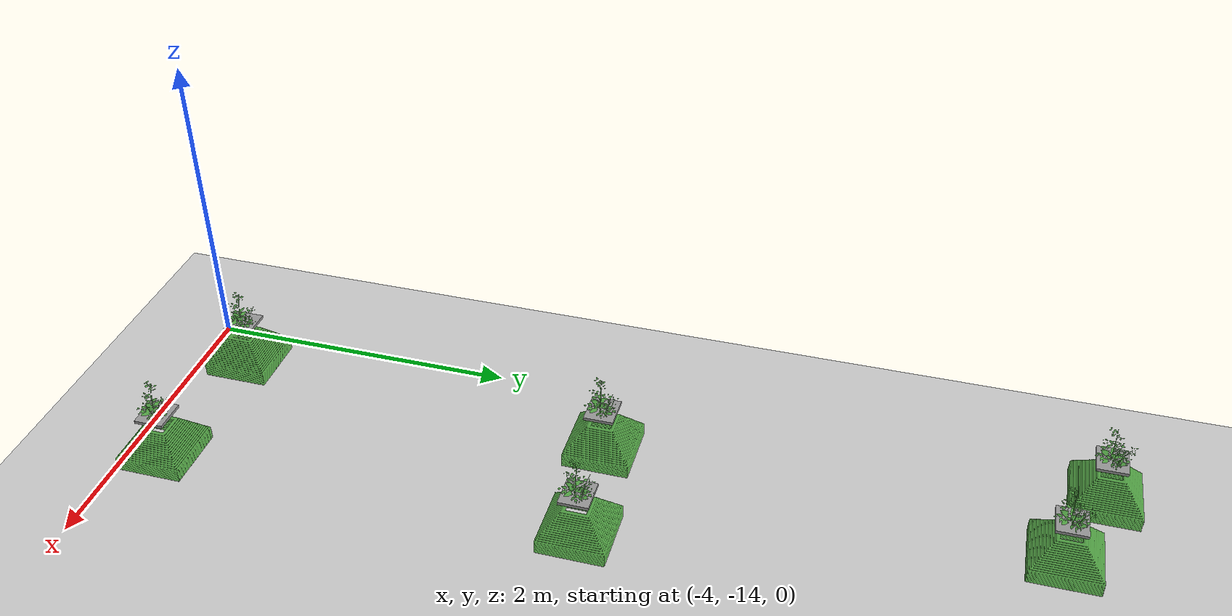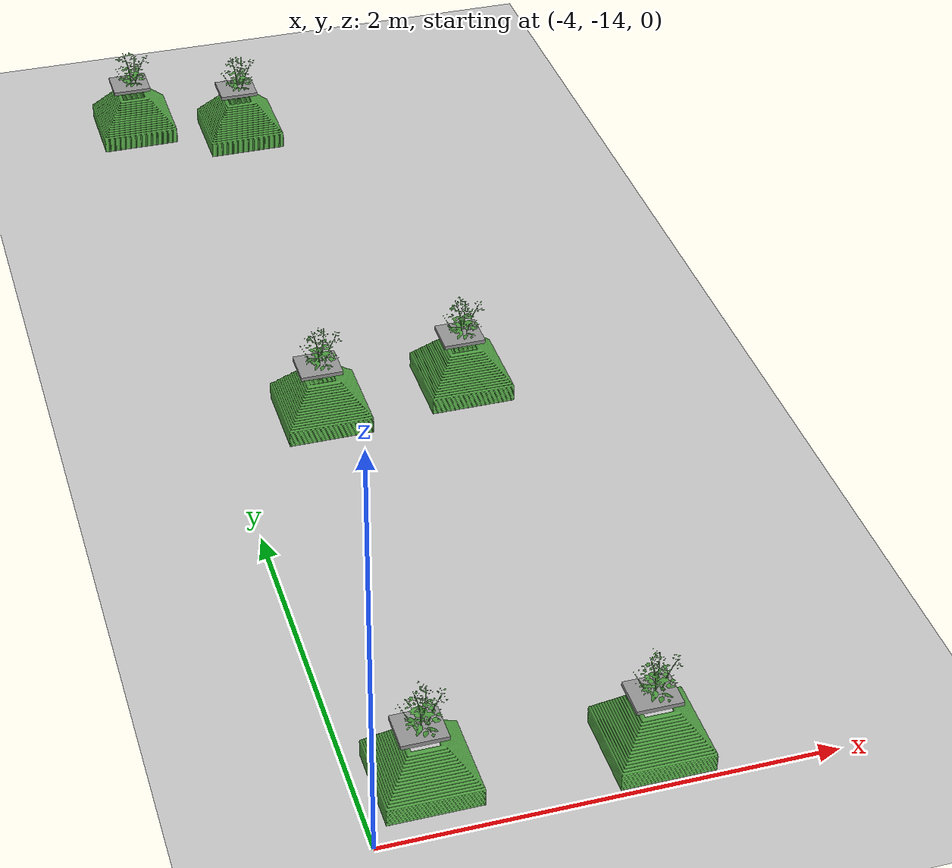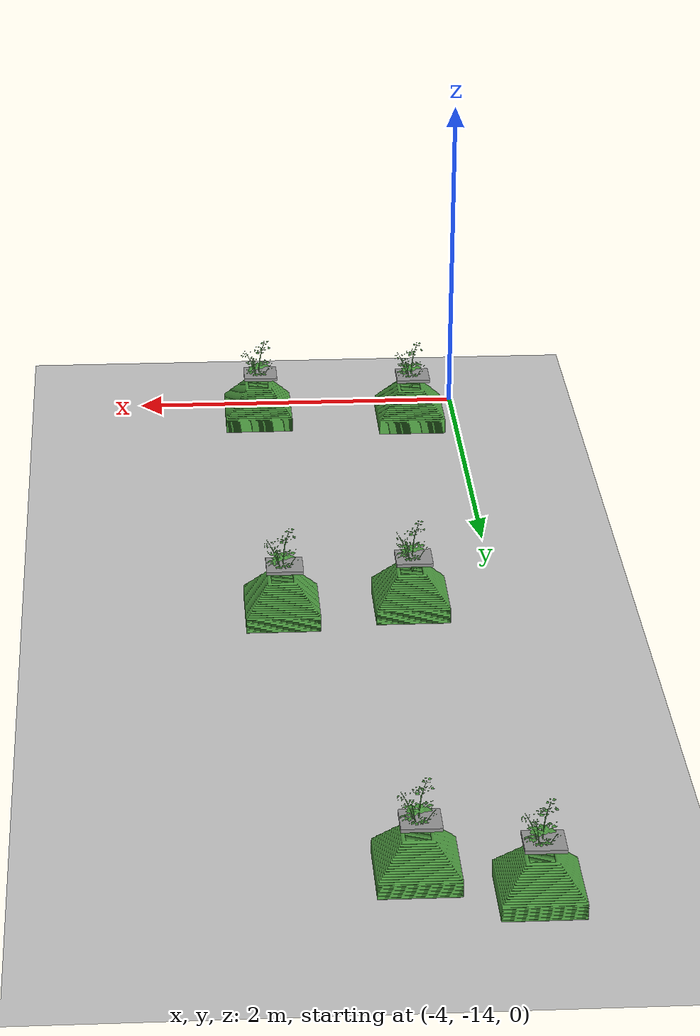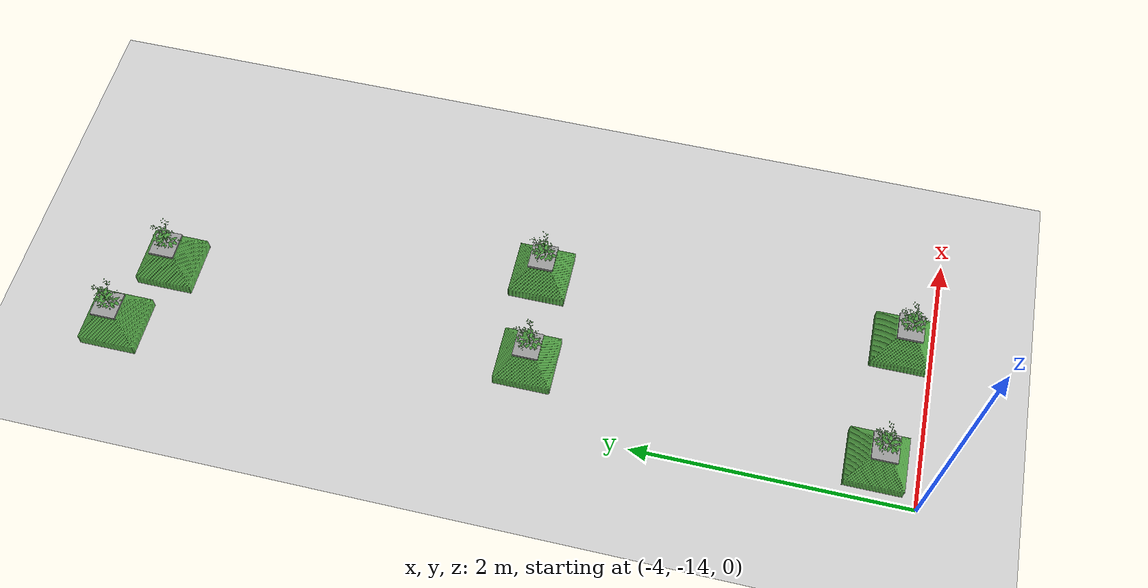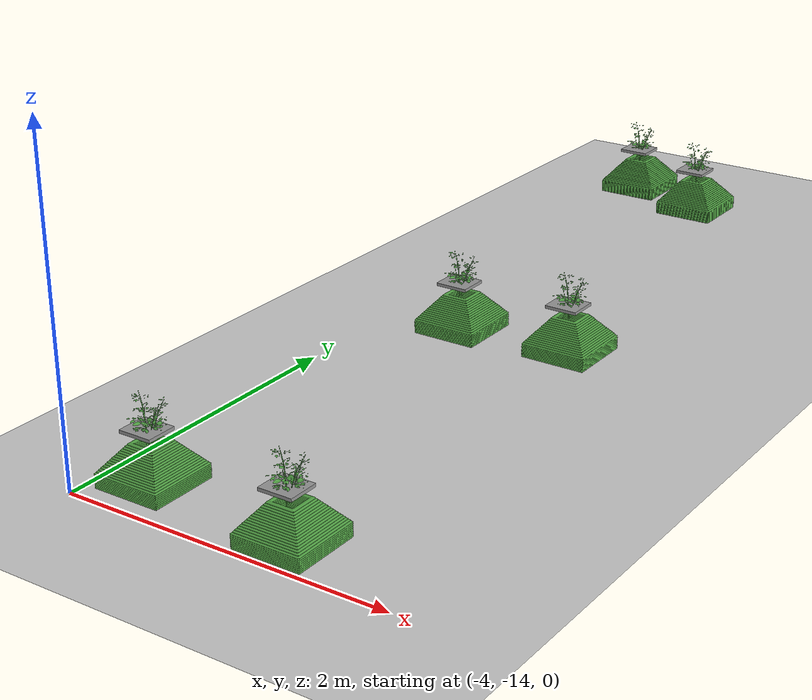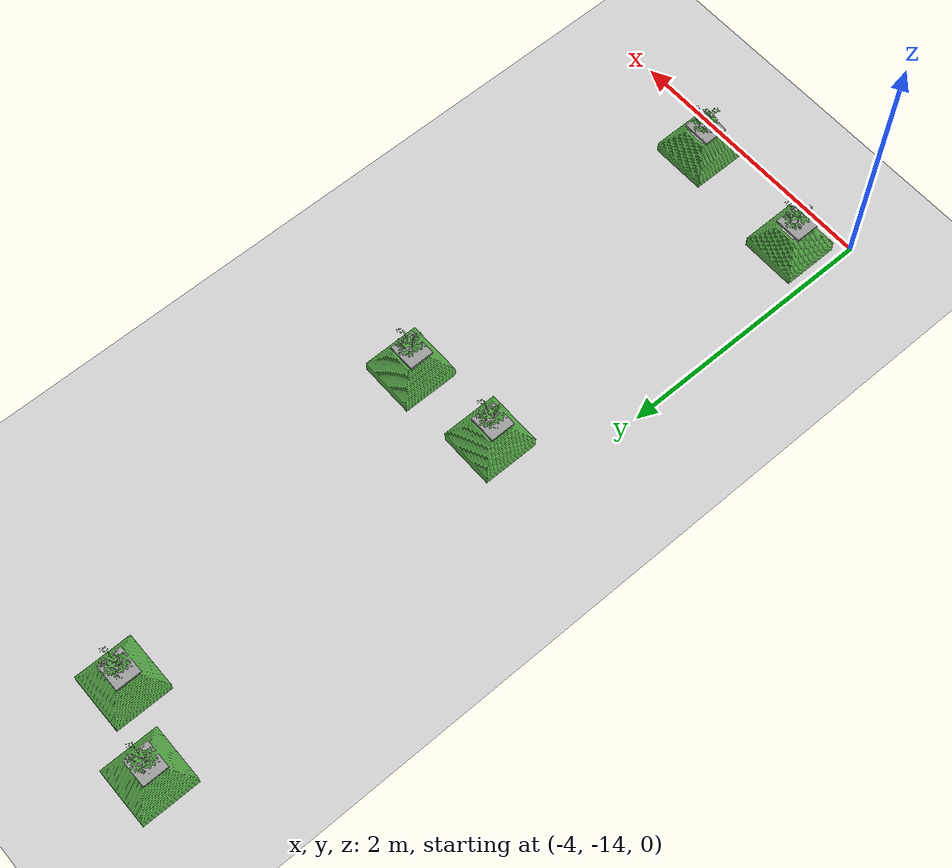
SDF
<sdf version="1.6">
 <world name="default">
  <model name="ground_plane">
   <static>1</static>
   <link name="link">
    <collision name="collision">
     <geometry><plane><normal>0 0 1</normal><size>100 100</size></plane></geometry>
     <surface><friction><ode><mu>100</mu><mu2>50</mu2></ode></friction></surface>
    </collision>
    <visual name="visual">
     <cast_shadows>0</cast_shadows>
     <geometry><plane><normal>0 0 1</normal><size>100 100</size></plane></geometry>
     <material>
      <script><uri>file://media/materials/scripts/gazebo.material</uri><name>Gazebo/Grey</name></script>
     </material>
    </visual>
   </link>
  </model>
  <model name="plant_33">
   <link name="link_0">
    <inertial>
     <mass>1</mass>
     <inertia>
      <ixx>0.0134051</ixx>
      <ixy>0</ixy>
      <ixz>0</ixz>
      <iyy>0.0134051</iyy>
      <iyz>0</iyz>
      <izz>0.0254102</izz>
     </inertia>
    </inertial>
    <gravity>0</gravity>
    <visual name="visual">
     <geometry><mesh><uri>model://square_pot/pot.stl</uri><scale>0.033 0.033 0.02</scale></mesh></geometry>
     <material>
      <lighting>1</lighting>
      <script><uri>file://media/materials/scripts/gazebo.material</uri><name>Gazebo/Grass</name></script>
      <ambient>0.3 0.3 0.3 1</ambient>
      <diffuse>0.7 0.7 0.7 1</diffuse>
      <specular>0.01 0.01 0.01 1</specular>
      <emissive>0 0 0 1</emissive>
      <shader type="vertex"><normal_map>__default__</normal_map></shader>
     </material>
    </visual>
    <collision name="collision">
     <pose>0 0 0.25 0 -0 0</pose>
     <geometry><box><size>0.4 0.4 0.4</size></box></geometry>
     <surface>
      <friction>
       <ode><mu>1</mu><mu2>1</mu2><fdir1>0 0 0</fdir1><slip1>0</slip1><slip2>0</slip2></ode>
       <torsional>
        <coefficient>1</coefficient>
        <patch_radius>0</patch_radius>
        <surface_radius>0</surface_radius>
        <use_patch_radius>1</use_patch_radius>
        <ode><slip>0</slip></ode>
       </torsional>
      </friction>
      <bounce><restitution_coefficient>0</restitution_coefficient><threshold>1e+06</threshold></bounce>
      <contact>
       <collide_without_contact>1</collide_without_contact>
       <collide_without_contact_bitmask>1</collide_without_contact_bitmask>
       <collide_bitmask>1</collide_bitmask>
       <ode>
        <soft_cfm>0</soft_cfm>
        <soft_erp>0.2</soft_erp>
        <kp>1e+13</kp>
        <kd>1</kd>
        <max_vel>0.01</max_vel>
        <min_depth>0</min_depth>
       </ode>
       <bullet>
        <split_impulse>1</split_impulse>
        <split_impulse_penetration_threshold>-0.01</split_impulse_penetration_threshold>
        <soft_cfm>0</soft_cfm>
        <soft_erp>0.2</soft_erp>
        <kp>1e+13</kp>
        <kd>1</kd>
       </bullet>
      </contact>
     </surface>
    </collision>
   </link>
   <link name="link_0_0">
    <pose>-0.011441 -0.008338 0.308474 0 -0 0</pose>
    <inertial>
     <mass>0.000736153</mass>
     <inertia>
      <ixx>2.11165e-06</ixx>
      <ixy>0</ixy>
      <ixz>0</ixz>
      <iyy>2.64382e-06</iyy>
      <iyz>0</iyz>
      <izz>4.70976e-06</izz>
     </inertia>
    </inertial>
    <visual name="visual">
     <geometry><box><size>0.206678 0.18452 0.019291</size></box></geometry>
     <material>
      <lighting>1</lighting>
      <script><uri>file://media/materials/scripts/gazebo.material</uri><name>Gazebo/Grey</name></script>
      <ambient>0.3 0.3 0.3 1</ambient>
      <diffuse>0.7 0.7 0.7 1</diffuse>
      <specular>0.01 0.01 0.01 1</specular>
      <emissive>0 0 0 1</emissive>
     </material>
    </visual>
    <collision name="collision">
     <geometry><box><size>0.206678 0.18452 0.019291</size></box></geometry>
     <surface>
      <friction>
       <ode><mu>1</mu><mu2>1</mu2><fdir1>0 0 0</fdir1><slip1>0</slip1><slip2>0</slip2></ode>
       <torsional>
        <coefficient>1</coefficient>
        <patch_radius>0</patch_radius>
        <surface_radius>0</surface_radius>
        <use_patch_radius>1</use_patch_radius>
        <ode><slip>0</slip></ode>
       </torsional>
      </friction>
      <bounce><restitution_coefficient>0</restitution_coefficient><threshold>1e+06</threshold></bounce>
      <contact>
       <collide_without_contact>0</collide_without_contact>
       <collide_without_contact_bitmask>1</collide_without_contact_bitmask>
       <collide_bitmask>1</collide_bitmask>
       <ode>
        <soft_cfm>0</soft_cfm>
        <soft_erp>0.2</soft_erp>
        <kp>1e+13</kp>
        <kd>1</kd>
        <max_vel>0.01</max_vel>
        <min_depth>0</min_depth>
       </ode>
       <bullet>
        <split_impulse>1</split_impulse>
        <split_impulse_penetration_threshold>-0.01</split_impulse_penetration_threshold>
        <soft_cfm>0</soft_cfm>
        <soft_erp>0.2</soft_erp>
        <kp>1e+13</kp>
        <kd>1</kd>
       </bullet>
      </contact>
     </surface>
    </collision>
   </link>
   <static>1</static>
   <pose>-3.87648 -8.16534 0 0 -0 0</pose>
  </model>
  <model name="plant_34">
   <link name="link_0">
    <inertial>
     <mass>1</mass>
     <inertia>
      <ixx>0.0134051</ixx>
      <ixy>0</ixy>
      <ixz>0</ixz>
      <iyy>0.0134051</iyy>
      <iyz>0</iyz>
      <izz>0.0254102</izz>
     </inertia>
    </inertial>
    <gravity>0</gravity>
    <visual name="visual">
     <geometry><mesh><uri>model://square_pot/pot.stl</uri><scale>0.033 0.033 0.02</scale></mesh></geometry>
     <material>
      <lighting>1</lighting>
      <script><uri>file://media/materials/scripts/gazebo.material</uri><name>Gazebo/Grass</name></script>
      <ambient>0.3 0.3 0.3 1</ambient>
      <diffuse>0.7 0.7 0.7 1</diffuse>
      <specular>0.01 0.01 0.01 1</specular>
      <emissive>0 0 0 1</emissive>
      <shader type="vertex"><normal_map>__default__</normal_map></shader>
     </material>
    </visual>
    <collision name="collision">
     <pose>0 0 0.25 0 -0 0</pose>
     <geometry><box><size>0.4 0.4 0.4</size></box></geometry>
     <surface>
      <friction>
       <ode><mu>1</mu><mu2>1</mu2><fdir1>0 0 0</fdir1><slip1>0</slip1><slip2>0</slip2></ode>
       <torsional>
        <coefficient>1</coefficient>
        <patch_radius>0</patch_radius>
        <surface_radius>0</surface_radius>
        <use_patch_radius>1</use_patch_radius>
        <ode><slip>0</slip></ode>
       </torsional>
      </friction>
      <bounce><restitution_coefficient>0</restitution_coefficient><threshold>1e+06</threshold></bounce>
      <contact>
       <collide_without_contact>1</collide_without_contact>
       <collide_without_contact_bitmask>1</collide_without_contact_bitmask>
       <collide_bitmask>1</collide_bitmask>
       <ode>
        <soft_cfm>0</soft_cfm>
        <soft_erp>0.2</soft_erp>
        <kp>1e+13</kp>
        <kd>1</kd>
        <max_vel>0.01</max_vel>
        <min_depth>0</min_depth>
       </ode>
       <bullet>
        <split_impulse>1</split_impulse>
        <split_impulse_penetration_threshold>-0.01</split_impulse_penetration_threshold>
        <soft_cfm>0</soft_cfm>
        <soft_erp>0.2</soft_erp>
        <kp>1e+13</kp>
        <kd>1</kd>
       </bullet>
      </contact>
     </surface>
    </collision>
   </link>
   <link name="link_0_0">
    <pose>-0.011441 -0.008338 0.308474 0 -0 0</pose>
    <inertial>
     <mass>0.000736153</mass>
     <inertia>
      <ixx>2.11165e-06</ixx>
      <ixy>0</ixy>
      <ixz>0</ixz>
      <iyy>2.64382e-06</iyy>
      <iyz>0</iyz>
      <izz>4.70976e-06</izz>
     </inertia>
    </inertial>
    <visual name="visual">
     <geometry><box><size>0.206678 0.18452 0.019291</size></box></geometry>
     <material>
      <lighting>1</lighting>
      <script><uri>file://media/materials/scripts/gazebo.material</uri><name>Gazebo/Grey</name></script>
      <ambient>0.3 0.3 0.3 1</ambient>
      <diffuse>0.7 0.7 0.7 1</diffuse>
      <specular>0.01 0.01 0.01 1</specular>
      <emissive>0 0 0 1</emissive>
     </material>
    </visual>
    <collision name="collision">
     <geometry><box><size>0.206678 0.18452 0.019291</size></box></geometry>
     <surface>
      <friction>
       <ode><mu>1</mu><mu2>1</mu2><fdir1>0 0 0</fdir1><slip1>0</slip1><slip2>0</slip2></ode>
       <torsional>
        <coefficient>1</coefficient>
        <patch_radius>0</patch_radius>
        <surface_radius>0</surface_radius>
        <use_patch_radius>1</use_patch_radius>
        <ode><slip>0</slip></ode>
       </torsional>
      </friction>
      <bounce><restitution_coefficient>0</restitution_coefficient><threshold>1e+06</threshold></bounce>
      <contact>
       <collide_without_contact>0</collide_without_contact>
       <collide_without_contact_bitmask>1</collide_without_contact_bitmask>
       <collide_bitmask>1</collide_bitmask>
       <ode>
        <soft_cfm>0</soft_cfm>
        <soft_erp>0.2</soft_erp>
        <kp>1e+13</kp>
        <kd>1</kd>
        <max_vel>0.01</max_vel>
        <min_depth>0</min_depth>
       </ode>
       <bullet>
        <split_impulse>1</split_impulse>
        <split_impulse_penetration_threshold>-0.01</split_impulse_penetration_threshold>
        <soft_cfm>0</soft_cfm>
        <soft_erp>0.2</soft_erp>
        <kp>1e+13</kp>
        <kd>1</kd>
       </bullet>
      </contact>
     </surface>
    </collision>
   </link>
   <static>1</static>
   <pose>-3.29938 -8.38818 0 0 -0 0</pose>
  </model>
  <model name="plant_41">
   <link name="link_0">
    <inertial>
     <mass>1</mass>
     <inertia>
      <ixx>0.0134051</ixx>
      <ixy>0</ixy>
      <ixz>0</ixz>
      <iyy>0.0134051</iyy>
      <iyz>0</iyz>
      <izz>0.0254102</izz>
     </inertia>
    </inertial>
    <gravity>0</gravity>
    <visual name="visual">
     <geometry><mesh><uri>model://square_pot/pot.stl</uri><scale>0.033 0.033 0.02</scale></mesh></geometry>
     <material>
      <lighting>1</lighting>
      <script><uri>file://media/materials/scripts/gazebo.material</uri><name>Gazebo/Grass</name></script>
      <ambient>0.3 0.3 0.3 1</ambient>
      <diffuse>0.7 0.7 0.7 1</diffuse>
      <specular>0.01 0.01 0.01 1</specular>
      <emissive>0 0 0 1</emissive>
      <shader type="vertex"><normal_map>__default__</normal_map></shader>
     </material>
    </visual>
    <collision name="collision">
     <pose>0 0 0.25 0 -0 0</pose>
     <geometry><box><size>0.4 0.4 0.4</size></box></geometry>
     <surface>
      <friction>
       <ode><mu>1</mu><mu2>1</mu2><fdir1>0 0 0</fdir1><slip1>0</slip1><slip2>0</slip2></ode>
       <torsional>
        <coefficient>1</coefficient>
        <patch_radius>0</patch_radius>
        <surface_radius>0</surface_radius>
        <use_patch_radius>1</use_patch_radius>
        <ode><slip>0</slip></ode>
       </torsional>
      </friction>
      <bounce><restitution_coefficient>0</restitution_coefficient><threshold>1e+06</threshold></bounce>
      <contact>
       <collide_without_contact>1</collide_without_contact>
       <collide_without_contact_bitmask>1</collide_without_contact_bitmask>
       <collide_bitmask>1</collide_bitmask>
       <ode>
        <soft_cfm>0</soft_cfm>
        <soft_erp>0.2</soft_erp>
        <kp>1e+13</kp>
        <kd>1</kd>
        <max_vel>0.01</max_vel>
        <min_depth>0</min_depth>
       </ode>
       <bullet>
        <split_impulse>1</split_impulse>
        <split_impulse_penetration_threshold>-0.01</split_impulse_penetration_threshold>
        <soft_cfm>0</soft_cfm>
        <soft_erp>0.2</soft_erp>
        <kp>1e+13</kp>
        <kd>1</kd>
       </bullet>
      </contact>
     </surface>
    </collision>
   </link>
   <link name="link_0_0">
    <pose>-0.011441 -0.008338 0.308474 0 -0 0</pose>
    <inertial>
     <mass>0.000736153</mass>
     <inertia>
      <ixx>2.11165e-06</ixx>
      <ixy>0</ixy>
      <ixz>0</ixz>
      <iyy>2.64382e-06</iyy>
      <iyz>0</iyz>
      <izz>4.70976e-06</izz>
     </inertia>
    </inertial>
    <visual name="visual">
     <geometry><box><size>0.206678 0.18452 0.019291</size></box></geometry>
     <material>
      <lighting>1</lighting>
      <script><uri>file://media/materials/scripts/gazebo.material</uri><name>Gazebo/Grey</name></script>
      <ambient>0.3 0.3 0.3 1</ambient>
      <diffuse>0.7 0.7 0.7 1</diffuse>
      <specular>0.01 0.01 0.01 1</specular>
      <emissive>0 0 0 1</emissive>
     </material>
    </visual>
    <collision name="collision">
     <geometry><box><size>0.206678 0.18452 0.019291</size></box></geometry>
     <surface>
      <friction>
       <ode><mu>1</mu><mu2>1</mu2><fdir1>0 0 0</fdir1><slip1>0</slip1><slip2>0</slip2></ode>
       <torsional>
        <coefficient>1</coefficient>
        <patch_radius>0</patch_radius>
        <surface_radius>0</surface_radius>
        <use_patch_radius>1</use_patch_radius>
        <ode><slip>0</slip></ode>
       </torsional>
      </friction>
      <bounce><restitution_coefficient>0</restitution_coefficient><threshold>1e+06</threshold></bounce>
      <contact>
       <collide_without_contact>0</collide_without_contact>
       <collide_without_contact_bitmask>1</collide_without_contact_bitmask>
       <collide_bitmask>1</collide_bitmask>
       <ode>
        <soft_cfm>0</soft_cfm>
        <soft_erp>0.2</soft_erp>
        <kp>1e+13</kp>
        <kd>1</kd>
        <max_vel>0.01</max_vel>
        <min_depth>0</min_depth>
       </ode>
       <bullet>
        <split_impulse>1</split_impulse>
        <split_impulse_penetration_threshold>-0.01</split_impulse_penetration_threshold>
        <soft_cfm>0</soft_cfm>
        <soft_erp>0.2</soft_erp>
        <kp>1e+13</kp>
        <kd>1</kd>
       </bullet>
      </contact>
     </surface>
    </collision>
   </link>
   <static>1</static>
   <pose>-3.7161 -13.6899 0 0 -0 0</pose>
  </model>
  <model name="plant_42">
   <link name="link_0">
    <inertial>
     <mass>1</mass>
     <inertia>
      <ixx>0.0134051</ixx>
      <ixy>0</ixy>
      <ixz>0</ixz>
      <iyy>0.0134051</iyy>
      <iyz>0</iyz>
      <izz>0.0254102</izz>
     </inertia>
    </inertial>
    <gravity>0</gravity>
    <visual name="visual">
     <geometry><mesh><uri>model://square_pot/pot.stl</uri><scale>0.033 0.033 0.02</scale></mesh></geometry>
     <material>
      <lighting>1</lighting>
      <script><uri>file://media/materials/scripts/gazebo.material</uri><name>Gazebo/Grass</name></script>
      <ambient>0.3 0.3 0.3 1</ambient>
      <diffuse>0.7 0.7 0.7 1</diffuse>
      <specular>0.01 0.01 0.01 1</specular>
      <emissive>0 0 0 1</emissive>
      <shader type="vertex"><normal_map>__default__</normal_map></shader>
     </material>
    </visual>
    <collision name="collision">
     <pose>0 0 0.25 0 -0 0</pose>
     <geometry><box><size>0.4 0.4 0.4</size></box></geometry>
     <surface>
      <friction>
       <ode><mu>1</mu><mu2>1</mu2><fdir1>0 0 0</fdir1><slip1>0</slip1><slip2>0</slip2></ode>
       <torsional>
        <coefficient>1</coefficient>
        <patch_radius>0</patch_radius>
        <surface_radius>0</surface_radius>
        <use_patch_radius>1</use_patch_radius>
        <ode><slip>0</slip></ode>
       </torsional>
      </friction>
      <bounce><restitution_coefficient>0</restitution_coefficient><threshold>1e+06</threshold></bounce>
      <contact>
       <collide_without_contact>1</collide_without_contact>
       <collide_without_contact_bitmask>1</collide_without_contact_bitmask>
       <collide_bitmask>1</collide_bitmask>
       <ode>
        <soft_cfm>0</soft_cfm>
        <soft_erp>0.2</soft_erp>
        <kp>1e+13</kp>
        <kd>1</kd>
        <max_vel>0.01</max_vel>
        <min_depth>0</min_depth>
       </ode>
       <bullet>
        <split_impulse>1</split_impulse>
        <split_impulse_penetration_threshold>-0.01</split_impulse_penetration_threshold>
        <soft_cfm>0</soft_cfm>
        <soft_erp>0.2</soft_erp>
        <kp>1e+13</kp>
        <kd>1</kd>
       </bullet>
      </contact>
     </surface>
    </collision>
   </link>
   <link name="link_0_0">
    <pose>-0.011441 -0.008338 0.308474 0 -0 0</pose>
    <inertial>
     <mass>0.000736153</mass>
     <inertia>
      <ixx>2.11165e-06</ixx>
      <ixy>0</ixy>
      <ixz>0</ixz>
      <iyy>2.64382e-06</iyy>
      <iyz>0</iyz>
      <izz>4.70976e-06</izz>
     </inertia>
    </inertial>
    <visual name="visual">
     <geometry><box><size>0.206678 0.18452 0.019291</size></box></geometry>
     <material>
      <lighting>1</lighting>
      <script><uri>file://media/materials/scripts/gazebo.material</uri><name>Gazebo/Grey</name></script>
      <ambient>0.3 0.3 0.3 1</ambient>
      <diffuse>0.7 0.7 0.7 1</diffuse>
      <specular>0.01 0.01 0.01 1</specular>
      <emissive>0 0 0 1</emissive>
     </material>
    </visual>
    <collision name="collision">
     <geometry><box><size>0.206678 0.18452 0.019291</size></box></geometry>
     <surface>
      <friction>
       <ode><mu>1</mu><mu2>1</mu2><fdir1>0 0 0</fdir1><slip1>0</slip1><slip2>0</slip2></ode>
       <torsional>
        <coefficient>1</coefficient>
        <patch_radius>0</patch_radius>
        <surface_radius>0</surface_radius>
        <use_patch_radius>1</use_patch_radius>
        <ode><slip>0</slip></ode>
       </torsional>
      </friction>
      <bounce><restitution_coefficient>0</restitution_coefficient><threshold>1e+06</threshold></bounce>
      <contact>
       <collide_without_contact>0</collide_without_contact>
       <collide_without_contact_bitmask>1</collide_without_contact_bitmask>
       <collide_bitmask>1</collide_bitmask>
       <ode>
        <soft_cfm>0</soft_cfm>
        <soft_erp>0.2</soft_erp>
        <kp>1e+13</kp>
        <kd>1</kd>
        <max_vel>0.01</max_vel>
        <min_depth>0</min_depth>
       </ode>
       <bullet>
        <split_impulse>1</split_impulse>
        <split_impulse_penetration_threshold>-0.01</split_impulse_penetration_threshold>
        <soft_cfm>0</soft_cfm>
        <soft_erp>0.2</soft_erp>
        <kp>1e+13</kp>
        <kd>1</kd>
       </bullet>
      </contact>
     </surface>
    </collision>
   </link>
   <static>1</static>
   <pose>-2.7467 -13.7678 0 0 -0 0</pose>
  </model>
  <model name="plant_49">
   <link name="link_0">
    <inertial>
     <mass>1</mass>
     <inertia>
      <ixx>0.0134051</ixx>
      <ixy>0</ixy>
      <ixz>0</ixz>
      <iyy>0.0134051</iyy>
      <iyz>0</iyz>
      <izz>0.0254102</izz>
     </inertia>
    </inertial>
    <gravity>0</gravity>
    <visual name="visual">
     <geometry><mesh><uri>model://square_pot/pot.stl</uri><scale>0.033 0.033 0.02</scale></mesh></geometry>
     <material>
      <lighting>1</lighting>
      <script><uri>file://media/materials/scripts/gazebo.material</uri><name>Gazebo/Grass</name></script>
      <ambient>0.3 0.3 0.3 1</ambient>
      <diffuse>0.7 0.7 0.7 1</diffuse>
      <specular>0.01 0.01 0.01 1</specular>
      <emissive>0 0 0 1</emissive>
      <shader type="vertex"><normal_map>__default__</normal_map></shader>
     </material>
    </visual>
    <collision name="collision">
     <pose>0 0 0.25 0 -0 0</pose>
     <geometry><box><size>0.4 0.4 0.4</size></box></geometry>
     <surface>
      <friction>
       <ode><mu>1</mu><mu2>1</mu2><fdir1>0 0 0</fdir1><slip1>0</slip1><slip2>0</slip2></ode>
       <torsional>
        <coefficient>1</coefficient>
        <patch_radius>0</patch_radius>
        <surface_radius>0</surface_radius>
        <use_patch_radius>1</use_patch_radius>
        <ode><slip>0</slip></ode>
       </torsional>
      </friction>
      <bounce><restitution_coefficient>0</restitution_coefficient><threshold>1e+06</threshold></bounce>
      <contact>
       <collide_without_contact>1</collide_without_contact>
       <collide_without_contact_bitmask>1</collide_without_contact_bitmask>
       <collide_bitmask>1</collide_bitmask>
       <ode>
        <soft_cfm>0</soft_cfm>
        <soft_erp>0.2</soft_erp>
        <kp>1e+13</kp>
        <kd>1</kd>
        <max_vel>0.01</max_vel>
        <min_depth>0</min_depth>
       </ode>
       <bullet>
        <split_impulse>1</split_impulse>
        <split_impulse_penetration_threshold>-0.01</split_impulse_penetration_threshold>
        <soft_cfm>0</soft_cfm>
        <soft_erp>0.2</soft_erp>
        <kp>1e+13</kp>
        <kd>1</kd>
       </bullet>
      </contact>
     </surface>
    </collision>
   </link>
   <link name="link_0_0">
    <pose>-0.011441 -0.008338 0.308474 0 -0 0</pose>
    <inertial>
     <mass>0.000736153</mass>
     <inertia>
      <ixx>2.11165e-06</ixx>
      <ixy>0</ixy>
      <ixz>0</ixz>
      <iyy>2.64382e-06</iyy>
      <iyz>0</iyz>
      <izz>4.70976e-06</izz>
     </inertia>
    </inertial>
    <visual name="visual">
     <geometry><box><size>0.206678 0.18452 0.019291</size></box></geometry>
     <material>
      <lighting>1</lighting>
      <script><uri>file://media/materials/scripts/gazebo.material</uri><name>Gazebo/Grey</name></script>
      <ambient>0.3 0.3 0.3 1</ambient>
      <diffuse>0.7 0.7 0.7 1</diffuse>
      <specular>0.01 0.01 0.01 1</specular>
      <emissive>0 0 0 1</emissive>
     </material>
    </visual>
    <collision name="collision">
     <geometry><box><size>0.206678 0.18452 0.019291</size></box></geometry>
     <surface>
      <friction>
       <ode><mu>1</mu><mu2>1</mu2><fdir1>0 0 0</fdir1><slip1>0</slip1><slip2>0</slip2></ode>
       <torsional>
        <coefficient>1</coefficient>
        <patch_radius>0</patch_radius>
        <surface_radius>0</surface_radius>
        <use_patch_radius>1</use_patch_radius>
        <ode><slip>0</slip></ode>
       </torsional>
      </friction>
      <bounce><restitution_coefficient>0</restitution_coefficient><threshold>1e+06</threshold></bounce>
      <contact>
       <collide_without_contact>0</collide_without_contact>
       <collide_without_contact_bitmask>1</collide_without_contact_bitmask>
       <collide_bitmask>1</collide_bitmask>
       <ode>
        <soft_cfm>0</soft_cfm>
        <soft_erp>0.2</soft_erp>
        <kp>1e+13</kp>
        <kd>1</kd>
        <max_vel>0.01</max_vel>
        <min_depth>0</min_depth>
       </ode>
       <bullet>
        <split_impulse>1</split_impulse>
        <split_impulse_penetration_threshold>-0.01</split_impulse_penetration_threshold>
        <soft_cfm>0</soft_cfm>
        <soft_erp>0.2</soft_erp>
        <kp>1e+13</kp>
        <kd>1</kd>
       </bullet>
      </contact>
     </surface>
    </collision>
   </link>
   <static>1</static>
   <pose>-3.50603 -11.1604 0 0 -0 0</pose>
  </model>
  <model name="plant_50">
   <link name="link_0">
    <inertial>
     <mass>1</mass>
     <inertia>
      <ixx>0.0134051</ixx>
      <ixy>0</ixy>
      <ixz>0</ixz>
      <iyy>0.0134051</iyy>
      <iyz>0</iyz>
      <izz>0.0254102</izz>
     </inertia>
    </inertial>
    <gravity>0</gravity>
    <visual name="visual">
     <geometry><mesh><uri>model://square_pot/pot.stl</uri><scale>0.033 0.033 0.02</scale></mesh></geometry>
     <material>
      <lighting>1</lighting>
      <script><uri>file://media/materials/scripts/gazebo.material</uri><name>Gazebo/Grass</name></script>
      <ambient>0.3 0.3 0.3 1</ambient>
      <diffuse>0.7 0.7 0.7 1</diffuse>
      <specular>0.01 0.01 0.01 1</specular>
      <emissive>0 0 0 1</emissive>
      <shader type="vertex"><normal_map>__default__</normal_map></shader>
     </material>
    </visual>
    <collision name="collision">
     <pose>0 0 0.25 0 -0 0</pose>
     <geometry><box><size>0.4 0.4 0.4</size></box></geometry>
     <surface>
      <friction>
       <ode><mu>1</mu><mu2>1</mu2><fdir1>0 0 0</fdir1><slip1>0</slip1><slip2>0</slip2></ode>
       <torsional>
        <coefficient>1</coefficient>
        <patch_radius>0</patch_radius>
        <surface_radius>0</surface_radius>
        <use_patch_radius>1</use_patch_radius>
        <ode><slip>0</slip></ode>
       </torsional>
      </friction>
      <bounce><restitution_coefficient>0</restitution_coefficient><threshold>1e+06</threshold></bounce>
      <contact>
       <collide_without_contact>1</collide_without_contact>
       <collide_without_contact_bitmask>1</collide_without_contact_bitmask>
       <collide_bitmask>1</collide_bitmask>
       <ode>
        <soft_cfm>0</soft_cfm>
        <soft_erp>0.2</soft_erp>
        <kp>1e+13</kp>
        <kd>1</kd>
        <max_vel>0.01</max_vel>
        <min_depth>0</min_depth>
       </ode>
       <bullet>
        <split_impulse>1</split_impulse>
        <split_impulse_penetration_threshold>-0.01</split_impulse_penetration_threshold>
        <soft_cfm>0</soft_cfm>
        <soft_erp>0.2</soft_erp>
        <kp>1e+13</kp>
        <kd>1</kd>
       </bullet>
      </contact>
     </surface>
    </collision>
   </link>
   <link name="link_0_0">
    <pose>-0.011441 -0.008338 0.308474 0 -0 0</pose>
    <inertial>
     <mass>0.000736153</mass>
     <inertia>
      <ixx>2.11165e-06</ixx>
      <ixy>0</ixy>
      <ixz>0</ixz>
      <iyy>2.64382e-06</iyy>
      <iyz>0</iyz>
      <izz>4.70976e-06</izz>
     </inertia>
    </inertial>
    <visual name="visual">
     <geometry><box><size>0.206678 0.18452 0.019291</size></box></geometry>
     <material>
      <lighting>1</lighting>
      <script><uri>file://media/materials/scripts/gazebo.material</uri><name>Gazebo/Grey</name></script>
      <ambient>0.3 0.3 0.3 1</ambient>
      <diffuse>0.7 0.7 0.7 1</diffuse>
      <specular>0.01 0.01 0.01 1</specular>
      <emissive>0 0 0 1</emissive>
     </material>
    </visual>
    <collision name="collision">
     <geometry><box><size>0.206678 0.18452 0.019291</size></box></geometry>
     <surface>
      <friction>
       <ode><mu>1</mu><mu2>1</mu2><fdir1>0 0 0</fdir1><slip1>0</slip1><slip2>0</slip2></ode>
       <torsional>
        <coefficient>1</coefficient>
        <patch_radius>0</patch_radius>
        <surface_radius>0</surface_radius>
        <use_patch_radius>1</use_patch_radius>
        <ode><slip>0</slip></ode>
       </torsional>
      </friction>
      <bounce><restitution_coefficient>0</restitution_coefficient><threshold>1e+06</threshold></bounce>
      <contact>
       <collide_without_contact>0</collide_without_contact>
       <collide_without_contact_bitmask>1</collide_without_contact_bitmask>
       <collide_bitmask>1</collide_bitmask>
       <ode>
        <soft_cfm>0</soft_cfm>
        <soft_erp>0.2</soft_erp>
        <kp>1e+13</kp>
        <kd>1</kd>
        <max_vel>0.01</max_vel>
        <min_depth>0</min_depth>
       </ode>
       <bullet>
        <split_impulse>1</split_impulse>
        <split_impulse_penetration_threshold>-0.01</split_impulse_penetration_threshold>
        <soft_cfm>0</soft_cfm>
        <soft_erp>0.2</soft_erp>
        <kp>1e+13</kp>
        <kd>1</kd>
       </bullet>
      </contact>
     </surface>
    </collision>
   </link>
   <static>1</static>
   <pose>-2.77126 -11.101 0 0 -0 0</pose>
  </model>
 </world>
</sdf>
